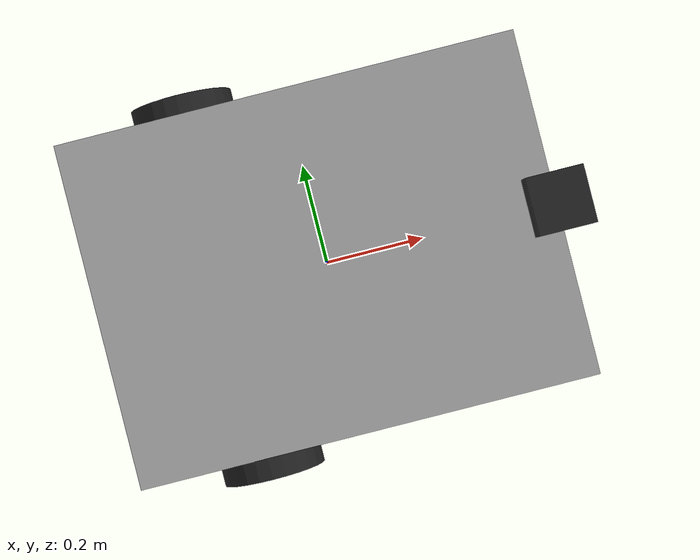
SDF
<sdf version='1.11'>
  <model name='autocart'>
    <link name='base_link'>
      <inertial>
        <pose>0.014649681528662421 0 0.1073248407643312 0 0 0</pose>
        <mass>15.699999999999999</mass>
        <inertia>
          <ixx>1.1274076433121021</ixx>
          <ixy>0</ixy>
          <ixz>-0.062815286624203839</ixz>
          <iyy>1.2330382165605089</iyy>
          <iyz>0</iyz>
          <izz>1.1266305732484081</izz>
        </inertia>
      </inertial>
      <collision name='base_link_collision'>
        <pose>0 0 0.25 0 0 0</pose>
        <geometry>
          <box>
            <size>0.80000000000000004 0.59999999999999998 0.5</size>
          </box>
        </geometry>
        <surface>
          <contact>
            <ode/>
          </contact>
          <friction>
            <ode/>
          </friction>
        </surface>
      </collision>
      <collision name='base_link_fixed_joint_lump__front_caster_collision_1'>
        <pose>0.29999999999999999 0 0.050000000000000003 0 0 0</pose>
        <geometry>
          <sphere>
            <radius>0.050000000000000003</radius>
          </sphere>
        </geometry>
      </collision>
      <visual name='base_link_visual'>
        <pose>0 0 0.25 0 0 0</pose>
        <geometry>
          <box>
            <size>0.80000000000000004 0.59999999999999998 0.5</size>
          </box>
        </geometry>
        <material>
          <script>
            <name>Gazebo/Grey</name>
            <uri>file://media/materials/scripts/gazebo.material</uri>
          </script>
          <diffuse>0.875 0.875 0.875 1</diffuse>
          <ambient>0.875 0.875 0.875 1</ambient>
        </material>
      </visual>
      <visual name='base_link_fixed_joint_lump__camera_link_visual_1'>
        <pose>0.40000000000000002 0 0.5 0 0 0</pose>
        <geometry>
          <box>
            <size>0.10000000000000001 0.10000000000000001 0.10000000000000001</size>
          </box>
        </geometry>
        <material>
          <diffuse>0.125 0.125 0.125 1</diffuse>
          <ambient>0.125 0.125 0.125 1</ambient>
        </material>
      </visual>
      <visual name='base_link_fixed_joint_lump__front_caster_visual_2'>
        <pose>0.29999999999999999 0 0.050000000000000003 0 0 0</pose>
        <geometry>
          <sphere>
            <radius>0.050000000000000003</radius>
          </sphere>
        </geometry>
        <material>
          <diffuse>0.125 0.125 0.125 1</diffuse>
          <ambient>0.125 0.125 0.125 1</ambient>
        </material>
      </visual>
      <sensor name='front_camera' type='camera'>
        <update_rate>15</update_rate>
        <camera>
          <horizontal_fov>1.3959999999999999</horizontal_fov>
          <image>
            <width>640</width>
            <height>480</height>
            <format>R8G8B8</format>
          </image>
          <clip>
            <near>0.10000000000000001</near>
            <far>50</far>
          </clip>
        </camera>
        <always_on>true</always_on>
        <visualize>true</visualize>
        <topic>camera/image</topic>
        <pose>0.40000000000000002 0 0.5 0 0 0</pose>
      </sensor>
      <sensor name='imu_sensor' type='imu'>
        <always_on>true</always_on>
        <update_rate>50</update_rate>
        <topic>imu/data</topic>
        <pose>0 0 0.29999999999999999 0 0 0</pose>
        <imu/>
      </sensor>
    </link>
    <joint name='left_wheel_joint' type='revolute'>
      <pose relative_to='base_link'>-0.20000000000000001 0.34999999999999998 0.10000000000000001 0 0 0</pose>
      <parent>base_link</parent>
      <child>left_wheel</child>
      <axis>
        <xyz>0 1 0</xyz>
        <limit>
          <lower>-inf</lower>
          <upper>inf</upper>
        </limit>
        <dynamics>
          <spring_reference>0</spring_reference>
          <spring_stiffness>0</spring_stiffness>
        </dynamics>
      </axis>
    </joint>
    <link name='left_wheel'>
      <pose relative_to='left_wheel_joint'>0 0 0 0 0 0</pose>
      <inertial>
        <pose>0 0 0 0 0 0</pose>
        <mass>1</mass>
        <inertia>
          <ixx>0.02</ixx>
          <ixy>0</ixy>
          <ixz>0</ixz>
          <iyy>0.01</iyy>
          <iyz>0</iyz>
          <izz>0.01</izz>
        </inertia>
      </inertial>
      <collision name='left_wheel_collision'>
        <pose>0 0 0 1.5708 0 0</pose>
        <geometry>
          <cylinder>
            <length>0.050000000000000003</length>
            <radius>0.10000000000000001</radius>
          </cylinder>
        </geometry>
      </collision>
      <visual name='left_wheel_visual'>
        <pose>0 0 0 1.5708 0 0</pose>
        <geometry>
          <cylinder>
            <length>0.050000000000000003</length>
            <radius>0.10000000000000001</radius>
          </cylinder>
        </geometry>
        <material>
          <diffuse>0.125 0.125 0.125 1</diffuse>
          <ambient>0.125 0.125 0.125 1</ambient>
        </material>
      </visual>
    </link>
    <joint name='right_wheel_joint' type='revolute'>
      <pose relative_to='base_link'>-0.20000000000000001 -0.34999999999999998 0.10000000000000001 0 0 0</pose>
      <parent>base_link</parent>
      <child>right_wheel</child>
      <axis>
        <xyz>0 1 0</xyz>
        <limit>
          <lower>-inf</lower>
          <upper>inf</upper>
        </limit>
        <dynamics>
          <spring_reference>0</spring_reference>
          <spring_stiffness>0</spring_stiffness>
        </dynamics>
      </axis>
    </joint>
    <link name='right_wheel'>
      <pose relative_to='right_wheel_joint'>0 0 0 0 0 0</pose>
      <inertial>
        <pose>0 0 0 0 0 0</pose>
        <mass>1</mass>
        <inertia>
          <ixx>0.01</ixx>
          <ixy>0</ixy>
          <ixz>0</ixz>
          <iyy>0.01</iyy>
          <iyz>0</iyz>
          <izz>0.01</izz>
        </inertia>
      </inertial>
      <collision name='right_wheel_collision'>
        <pose>0 0 0 1.5708 0 0</pose>
        <geometry>
          <cylinder>
            <length>0.050000000000000003</length>
            <radius>0.10000000000000001</radius>
          </cylinder>
        </geometry>
      </collision>
      <visual name='right_wheel_visual'>
        <pose>0 0 0 1.5708 0 0</pose>
        <geometry>
          <cylinder>
            <length>0.050000000000000003</length>
            <radius>0.10000000000000001</radius>
          </cylinder>
        </geometry>
        <material>
          <diffuse>0.125 0.125 0.125 1</diffuse>
          <ambient>0.125 0.125 0.125 1</ambient>
        </material>
      </visual>
    </link>
    <plugin name='gz::sim::systems::DiffDrive' filename='libgz-sim-diff-drive-system.so'>
      <left_joint>left_wheel_joint</left_joint>
      <right_joint>right_wheel_joint</right_joint>
      <wheel_separation>0.7</wheel_separation>
      <wheel_radius>0.1</wheel_radius>
      <max_linear_acceleration>1.0</max_linear_acceleration>
      <min_linear_acceleration>-1.0</min_linear_acceleration>
      <max_angular_acceleration>2.0</max_angular_acceleration>
      <min_angular_acceleration>-2.0</min_angular_acceleration>
      <max_linear_velocity>0.5</max_linear_velocity>
      <min_linear_velocity>-0.5</min_linear_velocity>
      <max_angular_velocity>1.0</max_angular_velocity>
      <min_angular_velocity>-1.0</min_angular_velocity>
      <topic>/cmd_vel</topic>
      <odom_topic>/odom</odom_topic>
      <frame_id>odom</frame_id>
      <child_frame_id>base_link</child_frame_id>
      <odom_publish_frequency>50</odom_publish_frequency>
    </plugin>
    <frame name='camera_joint' attached_to='base_link'>
      <pose>0.40000000000000002 0 0.5 0 0 0</pose>
    </frame>
    <frame name='camera_link' attached_to='camera_joint'>
      <pose>0 0 0 0 0 0</pose>
    </frame>
    <frame name='front_caster_joint' attached_to='base_link'>
      <pose>0.29999999999999999 0 0.050000000000000003 0 0 0</pose>
    </frame>
    <frame name='front_caster' attached_to='front_caster_joint'>
      <pose>0 0 0 0 0 0</pose>
    </frame>
    <frame name='imu_joint' attached_to='base_link'>
      <pose>0 0 0.29999999999999999 0 0 0</pose>
    </frame>
    <frame name='imu_link' attached_to='imu_joint'>
      <pose>0 0 0 0 0 0</pose>
    </frame>
  </model>
</sdf>
